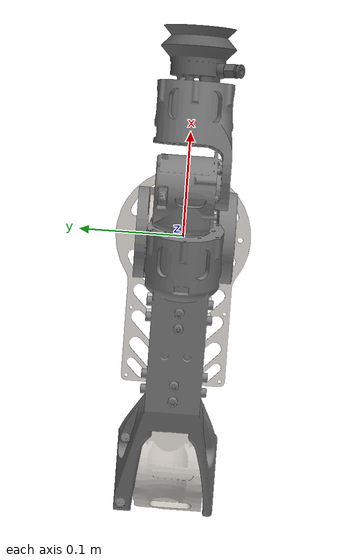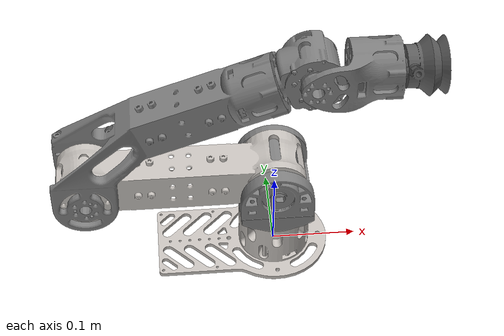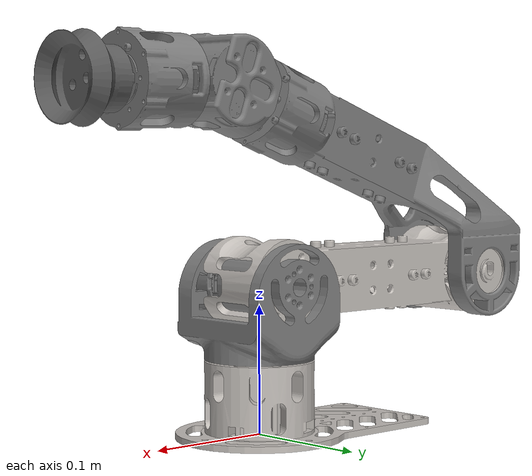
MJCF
<mujoco model="toe_arm">
  <compiler angle="radian" meshdir="meshes/"/>

  <asset>
    <mesh name="base_link" file="base_link.STL"/>
    <mesh name="Link_1" file="Link_1.STL"/>
    <mesh name="Link_2" file="Link_2.STL"/>
    <mesh name="Link_3" file="Link_3.STL"/>
    <mesh name="Link_4" file="Link_4.STL"/>
    <mesh name="Link_5" file="Link_5.STL"/>
    <mesh name="Link_6" file="Link_6.STL"/>
  </asset>

  <worldbody>
    <geom type="mesh" contype="0" conaffinity="0" group="1" density="0" rgba="0.77647 0.75686 0.73725 1" mesh="base_link"/>
    <geom type="mesh" rgba="0.77647 0.75686 0.73725 1" mesh="base_link"/>
    <body name="Link_1" pos="0 0 0.00525">
      <inertial pos="-1.18883e-05 -0.00820933 0.0980914" quat="0.707107 0.707107 0 0" mass="0.6931" diaginertia="0.0007 0.0006 0.0004"/>
      <joint name="Joint_1" pos="0 0 0" axis="0 0 -1" range="-3.14 3.14" actuatorfrcrange="-14 14"/>
      <geom type="mesh" contype="0" conaffinity="0" group="1" density="0" rgba="0.498039 0.498039 0.498039 1" mesh="Link_1"/>
      <geom type="mesh" rgba="0.498039 0.498039 0.498039 1" mesh="Link_1"/>
      <body name="Link_2" pos="0 0.02605 0.1113">
        <inertial pos="-0.147157 -0.0209732 -0.000580024" quat="0 0.707107 0 0.707107" mass="0.914" diaginertia="0.0055 0.0053 0.0005"/>
        <joint name="Joint_2" pos="0 0 0" axis="0 -1 0" range="-3.14 3.14" actuatorfrcrange="-14 14"/>
        <geom type="mesh" contype="0" conaffinity="0" group="1" density="0" rgba="0.776471 0.756863 0.737255 1" mesh="Link_2"/>
        <geom type="mesh" rgba="0.776471 0.756863 0.737255 1" mesh="Link_2"/>
        <body name="Link_3" pos="-0.22 -0.0521 0">
          <inertial pos="0.094941 0.0286371 0.0819414" quat="-0.0215912 0.5132 -0.0304692 0.857456" mass="0.808992" diaginertia="0.00626498 0.00619454 0.000601981"/>
          <joint name="Joint_3" pos="0 0 0" axis="0 1 0" range="-3.14 3.14" actuatorfrcrange="-14 14"/>
          <geom type="mesh" contype="0" conaffinity="0" group="1" density="0" rgba="0.498039 0.498039 0.498039 1" mesh="Link_3"/>
          <geom type="mesh" rgba="0.498039 0.498039 0.498039 1" mesh="Link_3"/>
          <body name="Link_4" pos="0.22217 0.02605 0.13945">
            <inertial pos="0.0260224 -0.00155889 0.0099806" mass="0.4021" diaginertia="0.0001 0.0001 0.0001"/>
            <joint name="Joint_4" pos="0 0 0" axis="-0.939692 0 -0.342021" range="-3.14 3.14" actuatorfrcrange="-3.5 3.5"/>
            <geom type="mesh" contype="0" conaffinity="0" group="1" density="0" rgba="0.498039 0.498039 0.498039 1" mesh="Link_4"/>
            <geom type="mesh" rgba="0.498039 0.498039 0.498039 1" mesh="Link_4"/>
            <body name="Link_5" pos="0.038058 -0.0208 0.013852">
              <inertial pos="0.0528312 0.0120611 0.000197975" quat="0.373401 0.331696 0.624277 0.600689" mass="0.4232" diaginertia="0.000211964 0.000202055 0.000120282"/>
              <joint name="Joint_5" pos="0 0 0" axis="0 1 0" range="-3.14 3.14" actuatorfrcrange="-3.5 3.5"/>
              <geom type="mesh" contype="0" conaffinity="0" group="1" density="0" rgba="0.498039 0.498039 0.498039 1" mesh="Link_5"/>
              <geom type="mesh" rgba="0.498039 0.498039 0.498039 1" mesh="Link_5"/>
              <body name="Link_6" pos="0.09205 0.0208 0">
                <inertial pos="0.0210183 -0.00109339 0.000631189" quat="0.867443 0.495928 -0.0349327 -0.0194316" mass="0.0503372" diaginertia="2.25467e-05 1.73296e-05 1.52237e-05"/>
                <joint name="Joint_6" pos="0 0 0" axis="-1 0 0" range="-3.14 3.14" actuatorfrcrange="-3.5 3.5"/>
                <geom type="mesh" contype="0" conaffinity="0" group="1" density="0" rgba="0.372549 0.372549 0.372549 1" mesh="Link_6"/>
                <geom type="mesh" rgba="0.372549 0.372549 0.372549 1" mesh="Link_6"/>
              </body>
            </body>
          </body>
        </body>
      </body>
    </body>
  </worldbody>
  <actuator>
        <motor joint="Joint_1" ctrlrange="-5 5"/>
        <motor joint="Joint_2" ctrlrange="-5 5"/>
        <motor joint="Joint_3" ctrlrange="-5 5"/>
        <motor joint="Joint_4" ctrlrange="-5 5"/>
        <motor joint="Joint_5" ctrlrange="-5 5"/>
        <motor joint="Joint_6" ctrlrange="-5 5"/>
  </actuator>
</mujoco>
